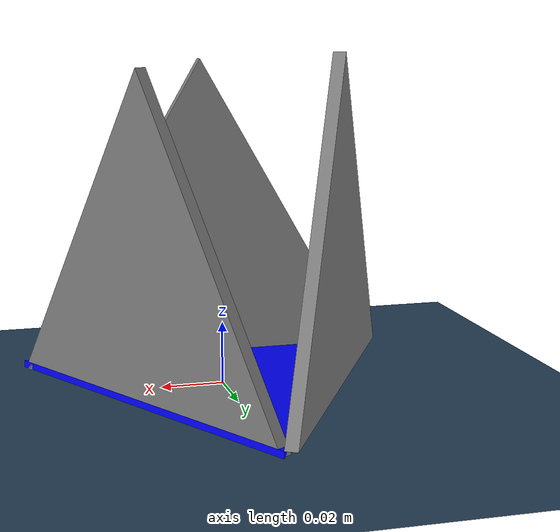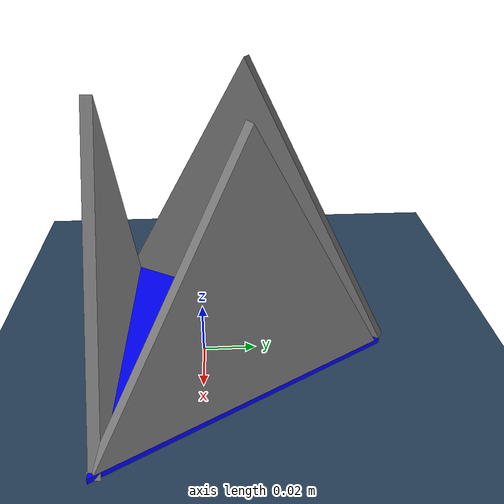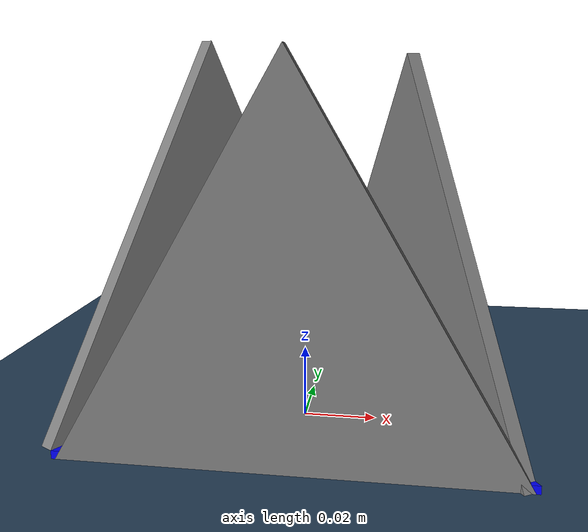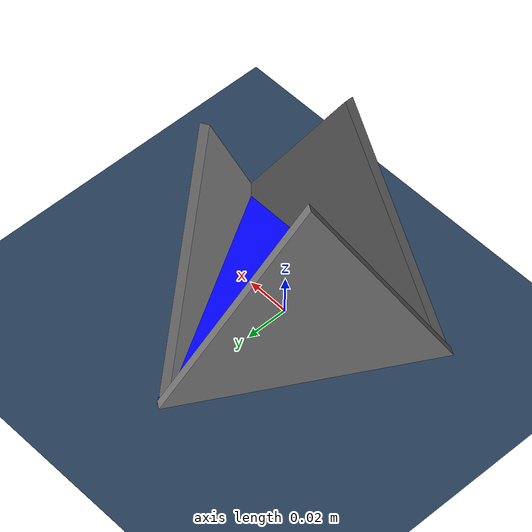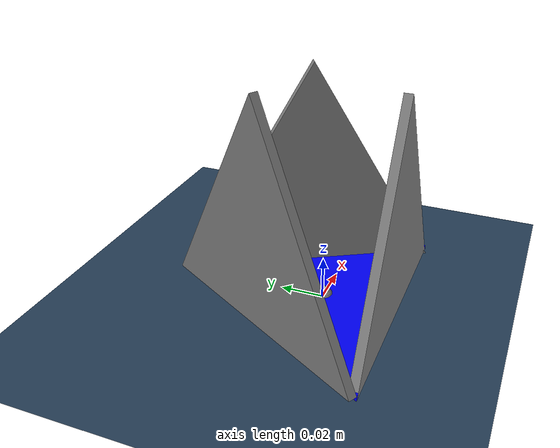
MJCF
<mujoco model="triangle_hinge_model">
    <!-- Set angle units to degrees -->
    <compiler angle="degree" />

    <!-- Simulation options -->
    <option timestep="0.001"
        gravity="0 0 -9.81" />

    <!-- Asset definition with inline mesh -->
    <asset>
        <texture name="grid" type="2d" builtin="checker" rgb1=".1 .2 .3"
            rgb2=".2 .3 .4" width="300" height="300" mark="none" />
        <material name="grid" texture="grid" texrepeat="1 1"
            texuniform="true" reflectance=".2" />

        <!-- Define materials for coloring -->
        <material name="blue_mat" rgba="0 0 1 1" />
        <material name="gray_mat" rgba="0.5 0.5 0.5 1" />

        <mesh name="base_mesh"
            vertex="
             -0.06 -0.034641 0.002      0.06 -0.034641  0.002     0.00  0.069282  0.002
             -0.06 -0.034641 -0.002  0.06 -0.034641 -0.002  0.00  0.069282 -0.002
          " />
        <mesh name="arm_mesh"
            vertex="
             -0.06 -0.034641  0     0.06 -0.034641  0     0.00  0.069282  0
             -0.06 -0.034641 -0.004  0.06 -0.034641 -0.004  0.00  0.069282 -0.004
          " />
    </asset>

    <worldbody>
        <light name="light" pos="0 0 2" diffuse="1 1 1" specular="1 1 1" />
        <geom name="floor" type="plane" pos="0 0 0" size="3 3 .1" material="grid" />
        <camera name="fixed" pos="0 -1.3 .5" xyaxes="1 0 0 0 1 2" />

        <!-- Base body: the centered triangle prism -->
        <body name="base" pos="0 0 0">
            <geom type="mesh" mesh="base_mesh" material="blue_mat" mass="0.1" />
            <joint type="free" name="base_free" />

            <site name="base_site" pos="0 0 0" />

            <body name="edge1" pos="-0.03 0.0173 0.002" euler="90 60 0">
                <joint type="hinge" name="joint1" axis="-1 0 0" range="90 180" damping="0.4" />
                <geom type="mesh" mesh="arm_mesh" material="gray_mat" pos="0 0.034641 0"
                    mass="0.015" />
            </body>

            <body name="edge2" pos="0 -0.03465 -0.002" euler="90 0 0">
                <joint type="hinge" name="joint2" axis="1 0 0" range="90 180" damping="0.4" />
                <geom type="mesh" mesh="arm_mesh" material="gray_mat" pos="0 0.034641 0"
                    mass="0.015" />
            </body>

            <body name="edge3" pos="0.03 0.0173 -0.002" euler="90 120 0">
                <joint type="hinge" name="joint3" axis="1 0 0" range="90 180" damping="0.4" />
                <geom type="mesh" mesh="arm_mesh" material="gray_mat" pos="0 0.034641 0"
                    mass="0.015" />
            </body>
        </body>
    </worldbody>

    <!-- Actuators to control each hinge -->
    <actuator>
        <position name="motor1"
            joint="joint1" gear="1" ctrllimited="true" inheritrange="1" />

        <position name="motor2"
            joint="joint2" gear="1" ctrllimited="true" inheritrange="1" />

        <position name="motor3"
            joint="joint3" gear="1" ctrllimited="true" inheritrange="1" />
    </actuator>

    <sensor>
        <accelerometer name="accel_sensor" site="base_site" />
        <gyro name="gyro_sensor" site="base_site" />
        <magnetometer name="mag_sensor" site="base_site" />
    </sensor>
</mujoco>
